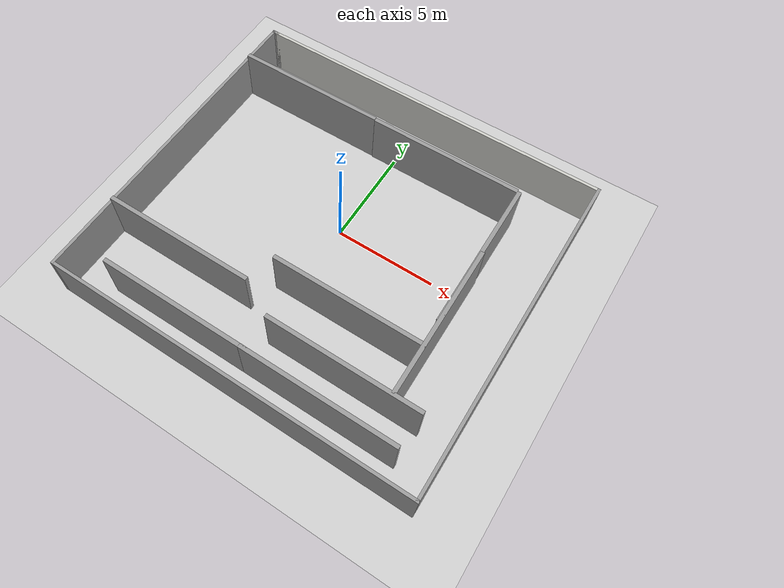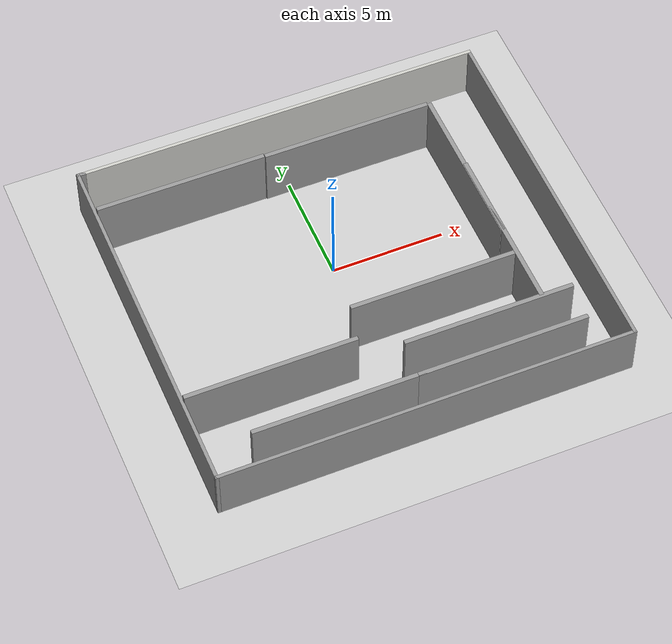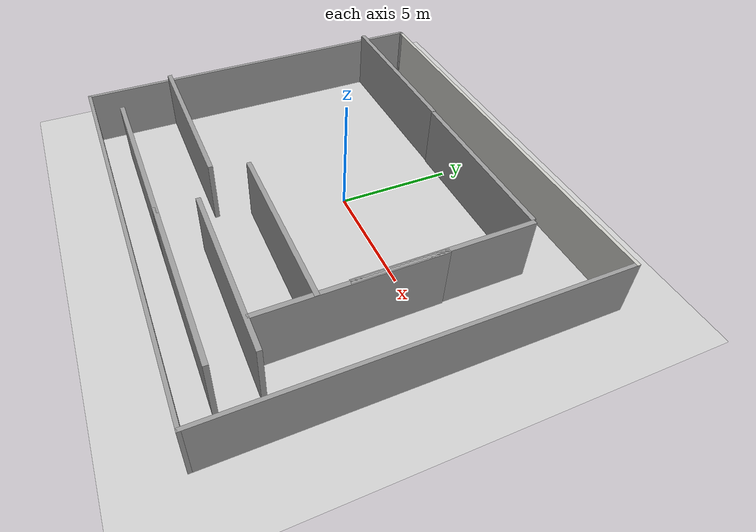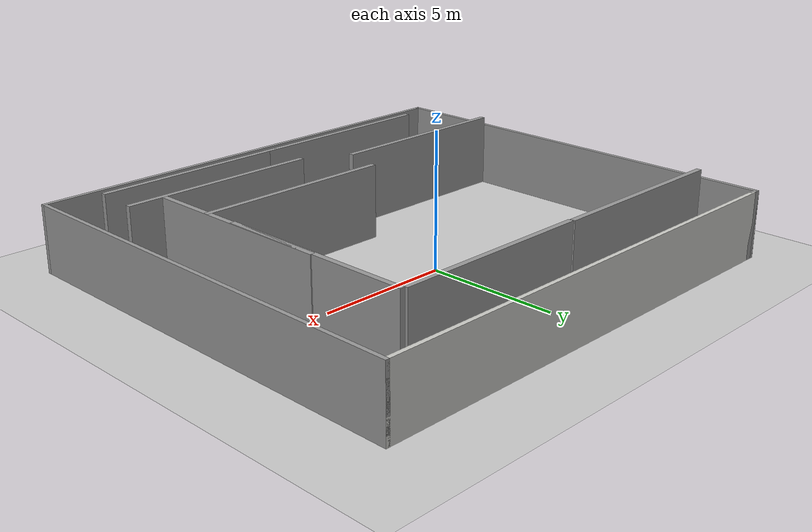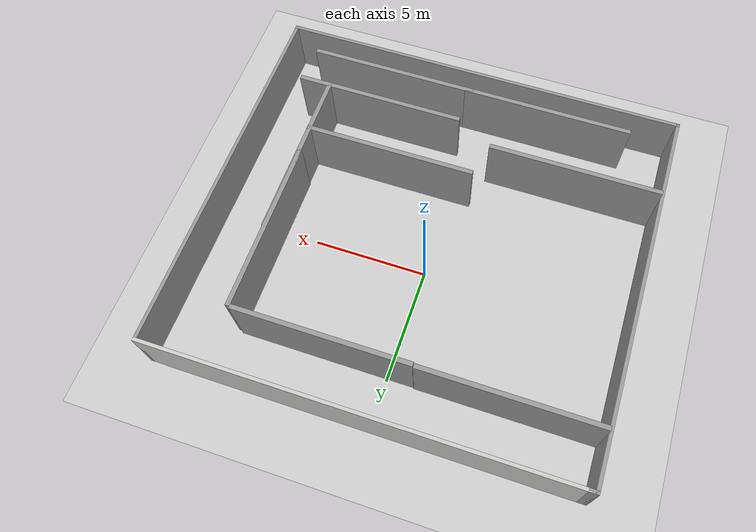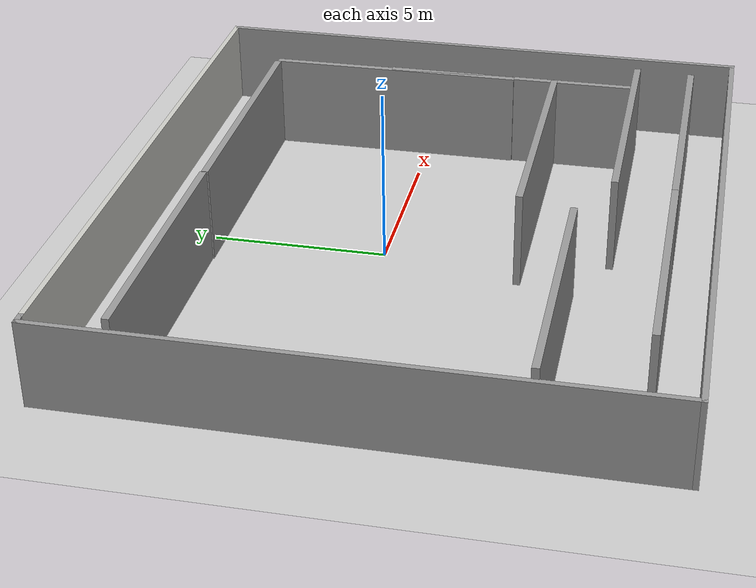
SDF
<sdf version="1.6">
 <world name="default">
  <light name="sun" type="directional">
   <pose>0 0 10 0 -0 0</pose>
   <diffuse>0.8 0.8 0.8 1</diffuse>
   <specular>0.1 0.1 0.1 1</specular>
   <attenuation>
    <range>1000</range>
    <constant>0.9</constant>
    <linear>0.01</linear>
    <quadratic>0.001</quadratic>
   </attenuation>
   <direction>-0.5 0.5 -1</direction>
  </light>
  <model name="ground_plane">
   <static>1</static>
   <link name="link">
    <collision name="collision">
     <geometry><plane><normal>0 0 1</normal><size>100 100</size></plane></geometry>
     <surface><friction><ode><mu>100</mu><mu2>50</mu2></ode></friction></surface>
    </collision>
    <visual name="visual">
     <cast_shadows>0</cast_shadows>
     <geometry><plane><normal>0 0 1</normal><size>100 100</size></plane></geometry>
     <material>
      <script><uri>file://media/materials/scripts/gazebo.material</uri><name>Gazebo/Grey</name></script>
     </material>
    </visual>
   </link>
  </model>
  <gravity>0 0 -9.8</gravity>
  <magnetic_field>6e-06 2.3e-05 -4.2e-05</magnetic_field>
  <atmosphere type="adiabatic"/>
  <physics name="default_physics" default="0" type="ode">
   <max_step_size>0.001</max_step_size>
   <real_time_factor>1</real_time_factor>
   <real_time_update_rate>1000</real_time_update_rate>
  </physics>
  <scene><ambient>0.4 0.4 0.4 1</ambient><background>0.7 0.7 0.7 1</background><shadows>1</shadows></scene>
  <spherical_coordinates>
   <surface_model>EARTH_WGS84</surface_model>
   <latitude_deg>0</latitude_deg>
   <longitude_deg>0</longitude_deg>
   <elevation>0</elevation>
   <heading_deg>0</heading_deg>
  </spherical_coordinates>
  <model name="emptyspace">
   <pose>0.32888 -1.08466 0 0 -0 0</pose>
   <link name="Wall_0">
    <collision name="Wall_0_Collision">
     <geometry><box><size>18 0.15 2.5</size></box></geometry>
     <pose>0 0 1.25 0 -0 0</pose>
    </collision>
    <visual name="Wall_0_Visual">
     <pose>0 0 1.25 0 -0 0</pose>
     <geometry><box><size>18 0.15 2.5</size></box></geometry>
     <material>
      <script><uri>file://media/materials/scripts/gazebo.material</uri><name>Gazebo/CeilingTiled</name></script>
      <ambient>1 1 1 1</ambient>
     </material>
    </visual>
    <pose>0.125 8.175 0 0 -0 0</pose>
   </link>
   <link name="Wall_1">
    <collision name="Wall_1_Collision">
     <geometry><box><size>16.5 0.15 2.5</size></box></geometry>
     <pose>0 0 1.25 0 -0 0</pose>
    </collision>
    <visual name="Wall_1_Visual">
     <pose>0 0 1.25 0 -0 0</pose>
     <geometry><box><size>16.5 0.15 2.5</size></box></geometry>
     <material>
      <script><uri>file://media/materials/scripts/gazebo.material</uri><name>Gazebo/Grey</name></script>
      <ambient>1 1 1 1</ambient>
     </material>
    </visual>
    <pose>9.05 0 0 0 0 -1.5708</pose>
   </link>
   <link name="Wall_2">
    <collision name="Wall_2_Collision">
     <geometry><box><size>18.25 0.15 2.5</size></box></geometry>
     <pose>0 0 1.25 0 -0 0</pose>
    </collision>
    <visual name="Wall_2_Visual">
     <pose>0 0 1.25 0 -0 0</pose>
     <geometry><box><size>18.25 0.15 2.5</size></box></geometry>
     <material>
      <script><uri>file://media/materials/scripts/gazebo.material</uri><name>Gazebo/Grey</name></script>
      <ambient>1 1 1 1</ambient>
     </material>
    </visual>
    <pose>0 -8.175 0 0 -0 3.14159</pose>
   </link>
   <link name="Wall_3">
    <collision name="Wall_3_Collision">
     <geometry><box><size>16.5 0.15 2.5</size></box></geometry>
     <pose>0 0 1.25 0 -0 0</pose>
    </collision>
    <visual name="Wall_3_Visual">
     <pose>0 0 1.25 0 -0 0</pose>
     <geometry><box><size>16.5 0.15 2.5</size></box></geometry>
     <material>
      <script><uri>file://media/materials/scripts/gazebo.material</uri><name>Gazebo/Grey</name></script>
      <ambient>1 1 1 1</ambient>
     </material>
    </visual>
    <pose>-9.05 0 0 0 -0 1.5708</pose>
   </link>
   <link name="Wall_4">
    <collision name="Wall_4_Collision">
     <geometry><box><size>0.15 0.15 2.5</size></box></geometry>
     <pose>0 0 1.25 0 -0 0</pose>
    </collision>
    <visual name="Wall_4_Visual">
     <pose>0 0 1.25 0 -0 0</pose>
     <geometry><box><size>0.15 0.15 2.5</size></box></geometry>
     <material>
      <script><uri>file://media/materials/scripts/gazebo.material</uri><name>Gazebo/Grey</name></script>
      <ambient>1 1 1 1</ambient>
     </material>
    </visual>
    <pose>-9.05 8.175 0 0 -0 0</pose>
   </link>
   <link name="Wall_5">
    <collision name="Wall_5_Collision">
     <geometry><box><size>0.4 0.15 2.5</size></box></geometry>
     <pose>0 0 1.25 0 -0 0</pose>
    </collision>
    <visual name="Wall_5_Visual">
     <pose>0 0 1.25 0 -0 0</pose>
     <geometry><box><size>0.4 0.15 2.5</size></box></geometry>
     <material>
      <script><uri>file://media/materials/scripts/gazebo.material</uri><name>Gazebo/Grey</name></script>
      <ambient>1 1 1 1</ambient>
     </material>
    </visual>
    <pose>-8.925 8.175 0 0 -0 0</pose>
   </link>
   <static>1</static>
  </model>
  <model name="grey_wall">
   <static>1</static>
   <link name="link">
    <pose>0 0 1.4 0 -0 0</pose>
    <collision name="collision"><geometry><box><size>7.5 0.2 2.8</size></box></geometry></collision>
    <visual name="visual">
     <cast_shadows>0</cast_shadows>
     <geometry><box><size>7.5 0.2 2.8</size></box></geometry>
     <material>
      <script>
       <uri>model://grey_wall/materials/scripts</uri>
       <uri>model://grey_wall/materials/textures</uri>
       <name>vrc/grey_wall</name>
      </script>
     </material>
    </visual>
   </link>
   <pose>-4.90768 4.83592 0 0 -0 0</pose>
  </model>
  <model name="grey_wall_0">
   <static>1</static>
   <link name="link">
    <pose>0 0 1.4 0 -0 0</pose>
    <collision name="collision"><geometry><box><size>7.5 0.2 2.8</size></box></geometry></collision>
    <visual name="visual">
     <cast_shadows>0</cast_shadows>
     <geometry><box><size>7.5 0.2 2.8</size></box></geometry>
     <material>
      <script>
       <uri>model://grey_wall/materials/scripts</uri>
       <uri>model://grey_wall/materials/textures</uri>
       <name>vrc/grey_wall</name>
      </script>
     </material>
    </visual>
   </link>
   <pose>2.617 4.79944 0 0 -0 0</pose>
  </model>
  <model name="grey_wall_1">
   <static>1</static>
   <link name="link">
    <pose>0 0 1.4 0 -0 0</pose>
    <collision name="collision"><geometry><box><size>7.5 0.2 2.8</size></box></geometry></collision>
    <visual name="visual">
     <cast_shadows>0</cast_shadows>
     <geometry><box><size>7.5 0.2 2.8</size></box></geometry>
     <material>
      <script>
       <uri>model://grey_wall/materials/scripts</uri>
       <uri>model://grey_wall/materials/textures</uri>
       <name>vrc/grey_wall</name>
      </script>
     </material>
    </visual>
   </link>
   <pose>-3.03777 -8.02366 0 0 -0 0</pose>
  </model>
  <model name="grey_wall_1_clone">
   <static>1</static>
   <link name="link">
    <pose>0 0 1.4 0 -0 0</pose>
    <collision name="collision"><geometry><box><size>7.5 0.2 2.8</size></box></geometry></collision>
    <visual name="visual">
     <cast_shadows>0</cast_shadows>
     <geometry><box><size>7.5 0.2 2.8</size></box></geometry>
     <material>
      <script>
       <uri>model://grey_wall/materials/scripts</uri>
       <uri>model://grey_wall/materials/textures</uri>
       <name>vrc/grey_wall</name>
      </script>
     </material>
    </visual>
   </link>
   <pose>4.10275 -8.02403 0 0 -0 0</pose>
  </model>
  <model name="grey_wall_1_clone_0">
   <static>1</static>
   <link name="link">
    <pose>0 0 1.4 0 -0 0</pose>
    <collision name="collision"><geometry><box><size>7.5 0.2 2.8</size></box></geometry></collision>
    <visual name="visual">
     <cast_shadows>0</cast_shadows>
     <geometry><box><size>7.5 0.2 2.8</size></box></geometry>
     <material>
      <script>
       <uri>model://grey_wall/materials/scripts</uri>
       <uri>model://grey_wall/materials/textures</uri>
       <name>vrc/grey_wall</name>
      </script>
     </material>
    </visual>
   </link>
   <pose>6.48837 1.05935 0 0 0 -1.56446</pose>
  </model>
  <model name="grey_wall_1_clone_0_clone">
   <static>1</static>
   <link name="link">
    <pose>0 0 1.4 0 -0 0</pose>
    <collision name="collision"><geometry><box><size>7.5 0.2 2.8</size></box></geometry></collision>
    <visual name="visual">
     <cast_shadows>0</cast_shadows>
     <geometry><box><size>7.5 0.2 2.8</size></box></geometry>
     <material>
      <script>
       <uri>model://grey_wall/materials/scripts</uri>
       <uri>model://grey_wall/materials/textures</uri>
       <name>vrc/grey_wall</name>
      </script>
     </material>
    </visual>
   </link>
   <pose>6.5527 -2.59722 0 0 0 -1.56446</pose>
  </model>
  <model name="grey_wall_0_clone">
   <static>1</static>
   <link name="link">
    <pose>0 0 1.4 0 -0 0</pose>
    <collision name="collision"><geometry><box><size>7.5 0.2 2.8</size></box></geometry></collision>
    <visual name="visual">
     <cast_shadows>0</cast_shadows>
     <geometry><box><size>7.5 0.2 2.8</size></box></geometry>
     <material>
      <script>
       <uri>model://grey_wall/materials/scripts</uri>
       <uri>model://grey_wall/materials/textures</uri>
       <name>vrc/grey_wall</name>
      </script>
     </material>
    </visual>
   </link>
   <pose>4.21959 -6.37138 0 0 -0 0</pose>
  </model>
  <model name="grey_wall_0_clone_0">
   <static>1</static>
   <link name="link">
    <pose>0 0 1.4 0 -0 0</pose>
    <collision name="collision"><geometry><box><size>7.5 0.2 2.8</size></box></geometry></collision>
    <visual name="visual">
     <cast_shadows>0</cast_shadows>
     <geometry><box><size>7.5 0.2 2.8</size></box></geometry>
     <material>
      <script>
       <uri>model://grey_wall/materials/scripts</uri>
       <uri>model://grey_wall/materials/textures</uri>
       <name>vrc/grey_wall</name>
      </script>
     </material>
    </visual>
   </link>
   <pose>2.89549 -3.92787 0 0 -0 0</pose>
  </model>
  <model name="grey_wall_0_clone_1">
   <static>1</static>
   <link name="link">
    <pose>0 0 1.4 0 -0 0</pose>
    <collision name="collision"><geometry><box><size>7.5 0.2 2.8</size></box></geometry></collision>
    <visual name="visual">
     <cast_shadows>0</cast_shadows>
     <geometry><box><size>7.5 0.2 2.8</size></box></geometry>
     <material>
      <script>
       <uri>model://grey_wall/materials/scripts</uri>
       <uri>model://grey_wall/materials/textures</uri>
       <name>vrc/grey_wall</name>
      </script>
     </material>
    </visual>
   </link>
   <pose>-4.90749 -5.44557 0 0 -0 0</pose>
  </model>
 </world>
</sdf>
